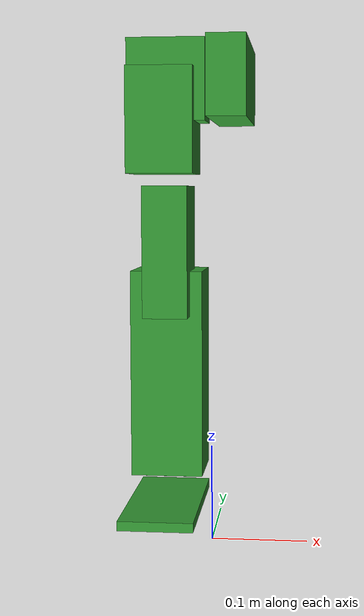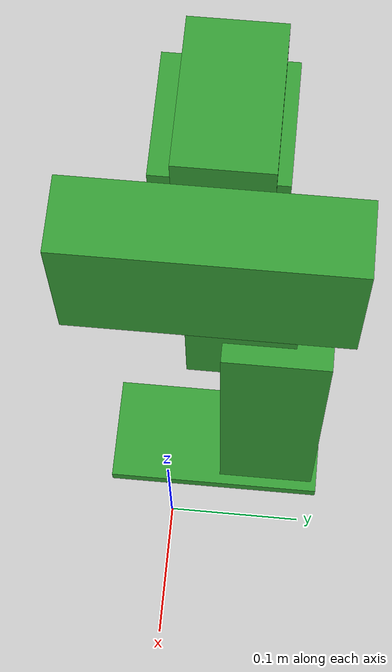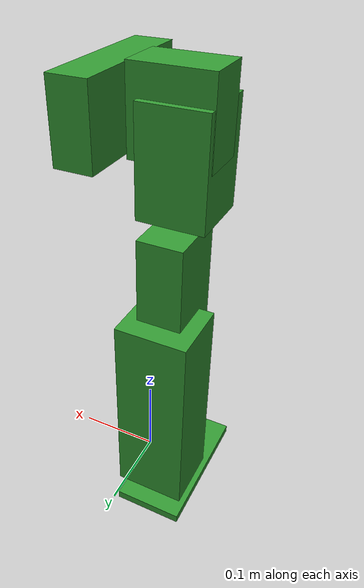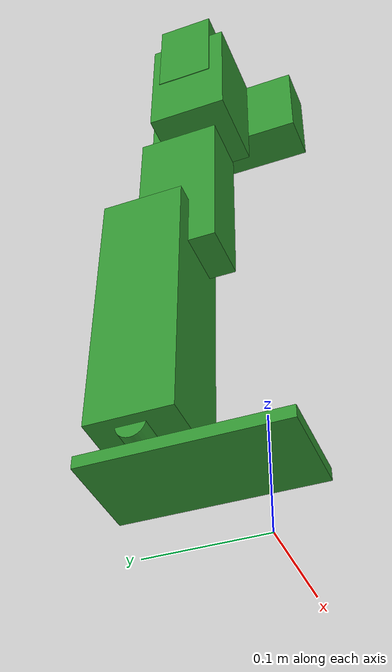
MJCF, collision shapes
<mujoco model="half_huphy">
  <compiler angle="radian" meshdir="meshes" autolimits="true"/>

  <!-- Motor parameters identified in inverse/assets/inverse.xml. -->
  <default>
    <default class="half_huphy">
      <joint damping="0" armature="0.003" frictionloss="0.125"/>
      <default class="visual">
        <geom type="mesh" contype="0" conaffinity="0" group="2"
          density="0" material="silver"/>
      </default>
      <default class="collision">
        <geom contype="1" conaffinity="1" group="3" density="0"
          friction="1.0 0.005 0.0001" rgba="0.2 0.6 0.2 0.3"/>
      </default>
    </default>
  </default>

  <asset>
    <material name="silver" rgba="0.7 0.7 0.7 1"/>
    <mesh name="base_link_mesh" file="base_link.stl" scale="0.001 0.001 0.001"/>
    <mesh name="hip_roll_mesh" file="hip_roll_link_1.stl"
      scale="0.001 0.001 0.001"/>
    <mesh name="hip_yaw_mesh" file="hip_yaw_link_1.stl"
      scale="0.001 0.001 0.001"/>
    <mesh name="thigh_mesh" file="thigh_link_1.stl" scale="0.001 0.001 0.001"/>
    <mesh name="shin_mesh" file="shin_link_1.stl" scale="0.001 0.001 0.001"/>
    <mesh name="ankle_pitch_mesh" file="ankle_pitch_link_1.stl"
      scale="0.001 0.001 0.001"/>
    <mesh name="foot_mesh" file="foot_link_1.stl" scale="0.001 0.001 0.001"/>
  </asset>

  <worldbody>
    <body name="base_link" pos="0 0 0.45" childclass="half_huphy">
      <inertial pos="0.0162556 0.0349538 0.0244597" mass="1.5389934"
        fullinertia="0.001367 0.000823 0.001024 -0.000001 0.000014 0"/>
      <freejoint name="floating_base_joint"/>
      <geom class="visual" mesh="base_link_mesh"/>
      <geom name="base_collision" class="collision" type="box"
        pos="0.0177 0.0350 0.0294" size="0.020 0.075 0.040"/>
      <site name="imu" pos="0.0162556 0.0349538 0.0244597" size="0.01"
        group="5"/>

      <body name="hip_roll_link_1" pos="-0.0045 0.035 0.024">
        <inertial pos="-0.0487938 -0.0011195 0.0005191" mass="1.6187818"
          fullinertia="0.000882 0.001283 0.000953 0.000003 -0.000019 0"/>
        <joint name="hip_pitch_joint" axis="-1 0 0"
          range="-0.523599 2.181662"/>
        <geom class="visual" mesh="hip_roll_mesh" pos="0.0045 -0.035 -0.024"/>
        <geom name="hip_roll_collision" class="collision" type="box"
          pos="-0.0452 0.0033 0.0079" size="0.041 0.025 0.0425"/>

        <body name="hip_yaw_link_1" pos="-0.0505 -0.0242 0">
          <inertial pos="-0.0000698 0.0240873 -0.0698026" mass="1.5692802"
            fullinertia="0.001110 0.001064 0.001141 0 0.000003 0.000035"/>
          <joint name="hip_roll_joint" axis="0 1 0"
            range="-0.349066 1.483530"/>
          <geom class="visual" mesh="hip_yaw_mesh" pos="0.055 -0.0108 -0.024"/>
          <geom name="hip_yaw_collision" class="collision" type="box"
            pos="0 0.0245 -0.0344" size="0.035 0.035 0.055"/>

          <body name="thigh_link_1" pos="0 0.0248 -0.096">
            <inertial pos="-0.0010157 0.0180393 -0.1048539" mass="1.6736257"
              fullinertia="0.002214 0.001878 0.000964 0.000003 -0.000012 0.000208"/>
            <joint name="hip_yaw_joint" axis="0 0 -1"
              range="-0.785398 0.785398"/>
            <geom class="visual" mesh="thigh_mesh" pos="0.055 -0.0356 0.072"/>
            <geom name="thigh_collision" class="collision" type="box"
              pos="0.0033 0.0130 -0.0760" size="0.024 0.035 0.070"/>

            <body name="shin_link_1" pos="0.0309 0.02 -0.112">
              <inertial pos="-0.0295472 0.0189112 -0.0999196" mass="2.4488729"
                fullinertia="0.004616 0.004882 0.001444 -0.000016 -0.000069 0.000189"/>
              <joint name="knee_pitch_joint" axis="1 0 0"
                range="0 2.007129"/>
              <geom class="visual" mesh="shin_mesh" pos="0.0241 -0.0556 0.184"/>
              <geom name="shin_collision" class="collision" type="box"
                pos="-0.0295 0.0163 -0.0979" size="0.039 0.035 0.1125"/>

              <body name="ankle_pitch_link_1" pos="-0.0295 0.0187 -0.209">
                <inertial pos="0 0 0" mass="0.0479089"
                  fullinertia="0.000005 0.000009 0.000009 0 0 0"/>
                <joint name="ankle_pitch_joint" axis="1 0 0"
                  range="-0.872665 0.872665"/>
                <geom class="visual" mesh="ankle_pitch_mesh"
                  pos="0.0536 -0.0743 0.393"/>
                <geom name="ankle_pitch_collision" class="collision"
                  type="cylinder" euler="0 1.570796 0" size="0.012 0.029"/>

                <body name="foot_link_1">
                  <inertial pos="0.0005242 -0.0203101 -0.0269112"
                    mass="0.2174537"
                    fullinertia="0.000536 0.000101 0.000594 0.000010 0.000001 -0.000043"/>
                  <joint name="ankle_roll_joint" axis="0 -1 0"
                    range="-0.436332 0.436332"/>
                  <geom class="visual" mesh="foot_mesh"
                    pos="0.0536 -0.0743 0.393"/>
                  <geom name="foot_collision" class="collision" type="box"
                    pos="0 -0.0425 -0.0300" size="0.039 0.080 0.005"
                    condim="6" priority="1"/>
                  <site name="foot" pos="0 -0.0425 -0.035" type="box"
                    size="0.039 0.080 0.002" group="5"/>
                </body>
              </body>
            </body>
          </body>
        </body>
      </body>
    </body>
  </worldbody>

  <actuator>
    <position name="hip_pitch_actuator" joint="hip_pitch_joint"
      kp="20.0" kv="0.502" ctrlrange="-0.523599 2.181662"
      forcelimited="true" forcerange="-17 17"/>
    <position name="hip_roll_actuator" joint="hip_roll_joint"
      kp="20.0" kv="0.502" ctrlrange="-0.349066 1.483530"
      forcelimited="true" forcerange="-17 17"/>
    <position name="hip_yaw_actuator" joint="hip_yaw_joint"
      kp="20.0" kv="0.502" ctrlrange="-0.785398 0.785398"
      forcelimited="true" forcerange="-17 17"/>
    <position name="knee_pitch_actuator" joint="knee_pitch_joint"
      kp="20.0" kv="0.502" ctrlrange="0 2.007129"
      forcelimited="true" forcerange="-17 17"/>
    <position name="ankle_pitch_actuator" joint="ankle_pitch_joint"
      kp="20.0" kv="0.502" ctrlrange="-0.872665 0.872665"
      forcelimited="true" forcerange="-17 17"/>
    <position name="ankle_roll_actuator" joint="ankle_roll_joint"
      kp="20.0" kv="0.502" ctrlrange="-0.436332 0.436332"
      forcelimited="true" forcerange="-17 17"/>
  </actuator>

  <sensor>
    <gyro name="imu_ang_vel" site="imu"/>
    <velocimeter name="imu_lin_vel" site="imu"/>
    <accelerometer name="imu_lin_acc" site="imu"/>
    <framezaxis name="imu_upvector" objtype="body" objname="world"
      reftype="site" refname="imu"/>
    <subtreeangmom name="root_angmom" body="base_link"/>
  </sensor>
</mujoco>
